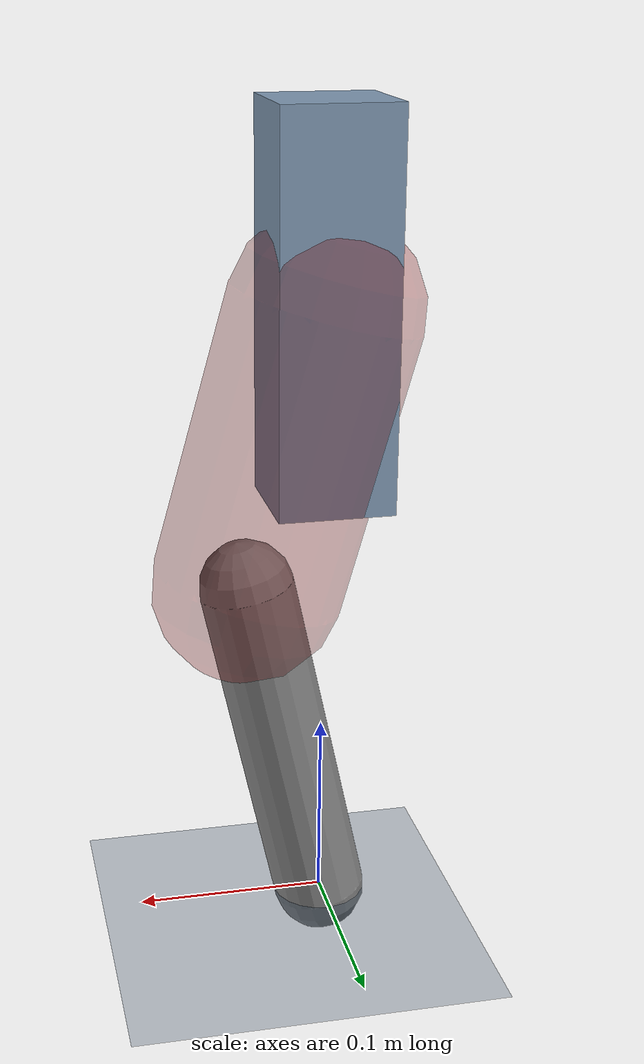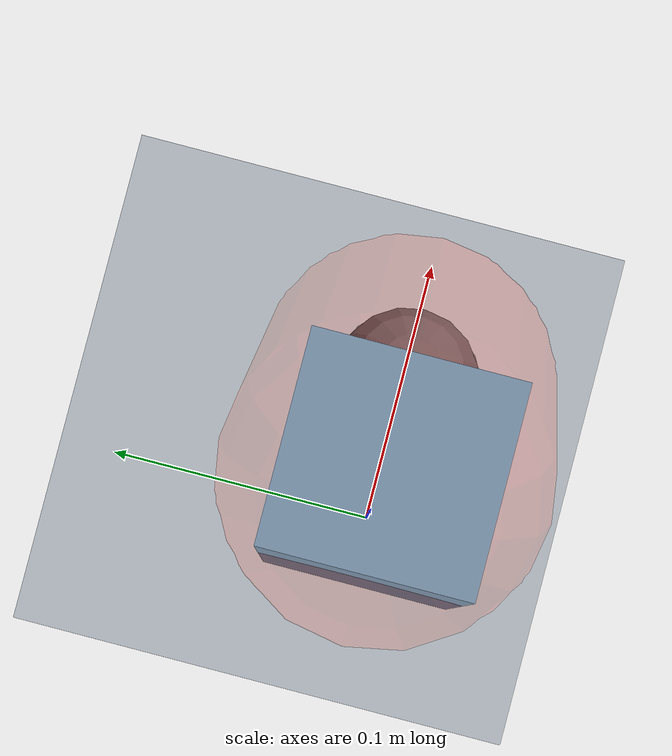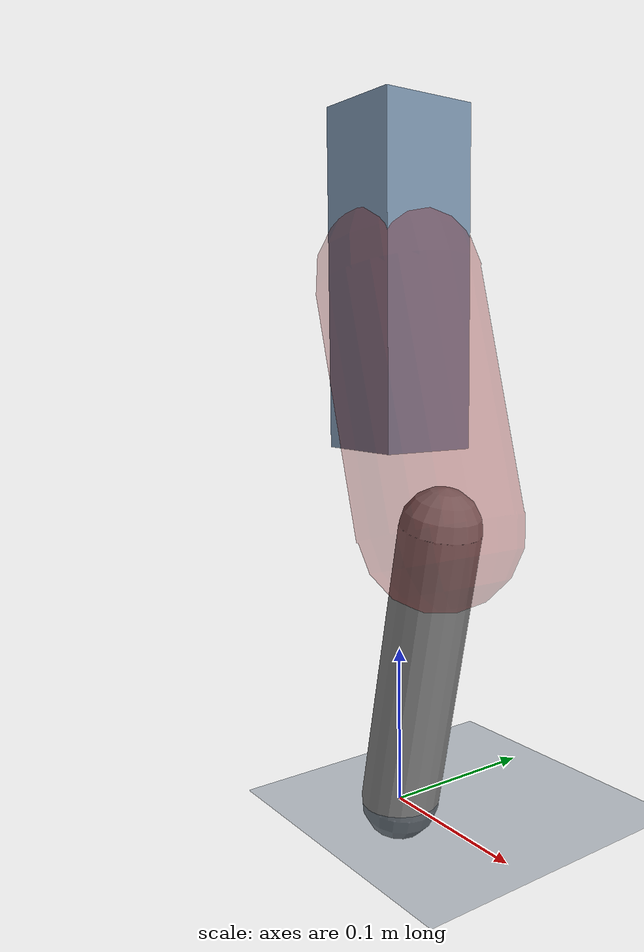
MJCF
<mujoco model="Hopper2D">
	<compiler inertiafromgeom="true" angle="radian" />
	<option timestep="0.001" integrator="implicit" cone="elliptic" solver="Newton" tolerance="1e-10" />

	<default>
		<geom contype="1" conaffinity="1" condim="3" friction="2 0.005 0.0001" solref="0.005 1" />
		<joint limited="true" damping="0.1" />
	</default>

	<asset>
		<texture name="skybox" type="skybox" builtin="gradient" rgb1=".4 .6 .8" rgb2="0 0 0" width="800" height="800" />
		<texture name="grid" type="2d" builtin="checker" rgb1=".1 .2 .3" rgb2=".2 .3 .4" width="300" height="300" mark="edge" markrgb=".2 .3 .4" />
		<material name="ground" texture="grid" texrepeat="1 1" texuniform="true" reflectance="0.1" />
		<material name="leg" rgba="0.5 0.6 0.7 1" />
	</asset>

	<worldbody>

		<geom name="floor" type="plane" size="5 5 0.25" material="ground" />

		<light directional="false" diffuse="0.8 0.8 0.8" specular="0.3 0.3 0.3" pos="0 0 2" dir="0 0 -1" />
		<light mode="targetbodycom" target="base" directional="false" diffuse="0.8 0.8 0.8" specular="0.3 0.3 0.3" pos="0 0 2" dir="0 0 -1" />

		<camera name="fixed" pos="0 -2 1" xyaxes="1 0 0 0 0 1" />
		<camera name="tracking" mode="trackcom" pos="0 -3 1" />

		<body name="root" pos="0 0 0.32758911792311596">
			<joint name="slide_x" type="slide" axis="1 0 0" range="-100 100" />
			<joint name="slide_z" type="slide" axis="0 0 1" range="0 10" />

			<body name="base" pos="0 0 0">
				<geom name="torso" type="box" size="0.03 0.03 0.1" mass="2.7910000000000004" material="leg" />

				<body name="link1" pos="0 0 0" euler="0 1.2974575394335064 0">
					<joint type="hinge" axis="0 -1 0" pos="0 0 0" name="hinge1" limited="true" range="-3.14 3.14" stiffness="0" damping="0.1" />
					<geom name="thigh" type="capsule" fromto="0 0 0 0.1500734436530821 0 0" size="0.05" rgba="0.5 0 0 0.3" mass="0.6086762647673971" />

					<body name="link2" pos="0.1500734436530821 0 0" euler="0 0.49110168249674124 0">
						<joint type="hinge" axis="0 -1 0" pos="0 0 0" name="hinge2" limited="true" range="-3.14 3.14" stiffness="0" damping="0.1" />
						<geom name="shank" type="capsule" fromto="0 0 0 0.1875156742700339 0 0" size="0.025" mass="0.3903125394160271" />

					</body>
				</body>
			</body>
		</body>
	</worldbody>

	<actuator>
		<motor name="torque1" joint="hinge1" ctrlrange="-40.6116771970259 40.6116771970259" ctrllimited="true" gear="1" />
		<motor name="torque2" joint="hinge2" ctrlrange="-66.02431598207323 66.02431598207323" ctrllimited="true" gear="1" />
	</actuator>
</mujoco>
